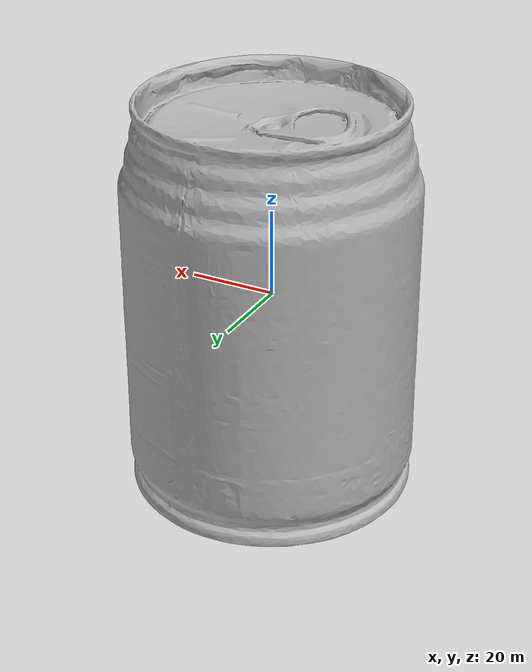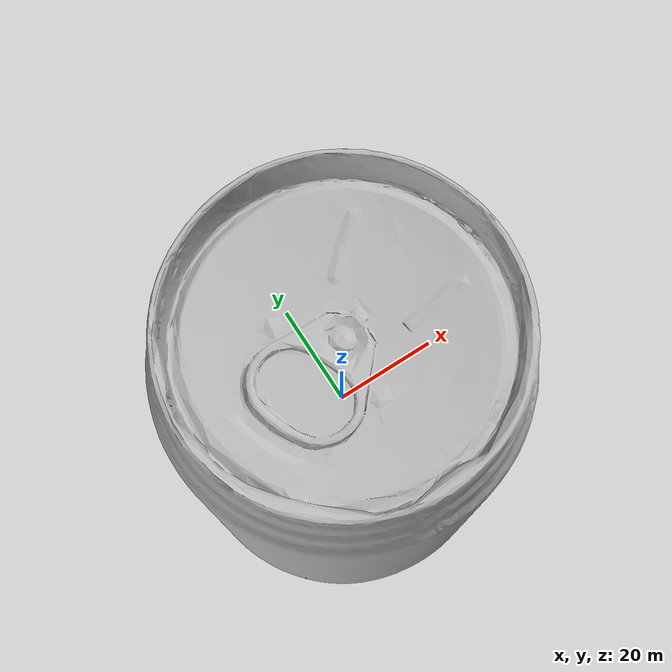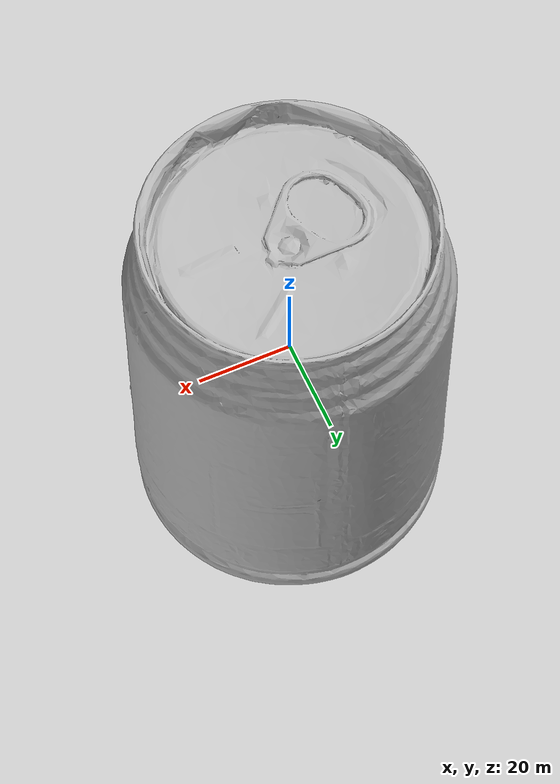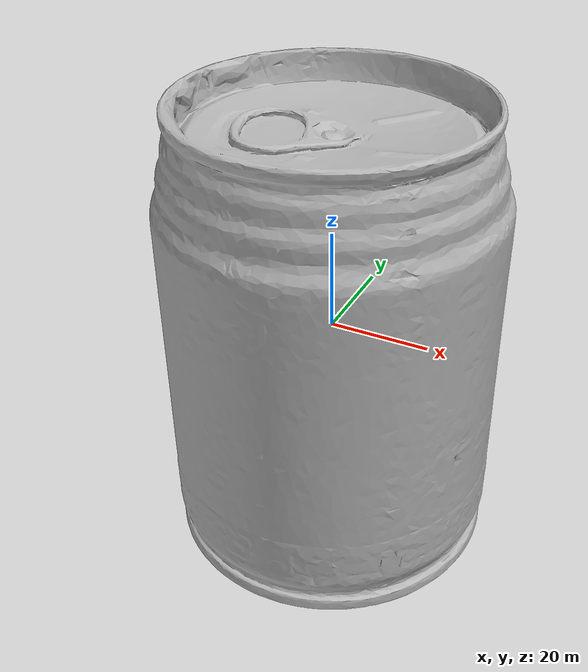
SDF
<sdf version="1.4">
 <world name="default">
  <light name="light1" type="point">
   <pose>0 0 1 0 0 0</pose>
   <diffuse>3 3 3 1</diffuse>
   <specular>3 3 3 1</specular>
  </light>
  <light name="light2" type="point">
   <pose>0 0.5 2 0 0 0</pose>
   <diffuse>1 1 1 1</diffuse>
   <specular>1 1 1 1</specular>
  </light>
  <light name="light3" type="point">
   <pose>0 0.5 2 0 0 0</pose>
   <diffuse>3 3 3 1</diffuse>
   <specular>3 3 3 1</specular>
  </light>
  <scene><ambient>0.7 0.7 0.7</ambient></scene>
  <model name="box1">
   <link name="link_box1">
    <collision name="default">
     <geometry>
      <mesh><uri>model://wooden_puzzle1/collision_meshes/collision.obj</uri><scale>1.0 1.0 1.0</scale></mesh>
     </geometry>
     <surface>
      <friction><ode><mu>0.5</mu><mu2>0.5</mu2></ode></friction>
      <contact><ode><max_vel>0</max_vel><min_depth>0.0001</min_depth><kp>1e8</kp></ode></contact>
     </surface>
    </collision>
    <visual name="default">
     <geometry>
      <mesh><uri>model://wooden_puzzle1/visual_meshes/visual.dae</uri><scale>1.0 1.0 1.0</scale></mesh>
     </geometry>
    </visual>
    <inertial>
     <mass>0.025116289034485817</mass>
     <pose>-0.00017350679263472557 7.972260937094688e-05 -9.191555000143126e-05 -0.07784885804399136 -0.2636065522190298 -0.5528757227143044</pose>
     <inertia>
      <ixx>4.7387575e-06</ixx>
      <iyy>4.647534e-06</iyy>
      <izz>4.7029785e-06</izz>
      <ixy>0</ixy>
      <ixz>0</ixz>
      <iyz>0</iyz>
     </inertia>
    </inertial>
   </link>
   <pose>0.16632626950740814 -0.38049036264419556 0.0168019887059927 0.010515780898731189 -0.009457575884297742 0.17607425134252094</pose>
  </model>
  <model name="box3">
   <link name="link_box3">
    <collision name="default">
     <geometry>
      <mesh><uri>model://wooden_puzzle2/collision_meshes/collision.obj</uri><scale>1.0 1.0 1.0</scale></mesh>
     </geometry>
     <surface>
      <friction><ode><mu>0.5</mu><mu2>0.5</mu2></ode></friction>
      <contact><ode><max_vel>0</max_vel><min_depth>0.0001</min_depth><kp>1e8</kp></ode></contact>
     </surface>
    </collision>
    <visual name="default">
     <geometry>
      <mesh><uri>model://wooden_puzzle2/visual_meshes/visual.dae</uri><scale>1.0 1.0 1.0</scale></mesh>
     </geometry>
    </visual>
    <inertial>
     <mass>0.025376593694090843</mass>
     <pose>2.7402536943554878e-05 4.997663199901581e-05 6.587122334167361e-05 -0.1920355258808483 0.6112750807505014 -0.6338716229052327</pose>
     <inertia>
      <ixx>4.7172375e-06</ixx>
      <iyy>4.8472266e-06</iyy>
      <izz>4.778271e-06</izz>
      <ixy>0</ixy>
      <ixz>0</ixz>
      <iyz>0</iyz>
     </inertia>
    </inertial>
   </link>
   <pose>0.07180654257535934 0.27882757782936096 0.01691773347556591 0.020848384565863267 0.0007214576589247447 2.463595150234853</pose>
  </model>
  <model name="can1">
   <link name="link_can1">
    <collision name="default">
     <geometry>
      <mesh><uri>model://redbull/collision_meshes/collision.obj</uri><scale>1.0 1.0 1.0</scale></mesh>
     </geometry>
     <surface>
      <friction><ode><mu>0.5</mu><mu2>0.5</mu2></ode></friction>
      <contact><ode><max_vel>0</max_vel><min_depth>0.0001</min_depth><kp>1e8</kp></ode></contact>
     </surface>
    </collision>
    <visual name="default">
     <geometry>
      <mesh><uri>model://redbull/visual_meshes/visual.dae</uri><scale>1.0 1.0 1.0</scale></mesh>
     </geometry>
    </visual>
    <inertial>
     <mass>0.2544018626213074</mass>
     <pose>-2.2126756448415108e-05 -0.0001265947794308886 -0.0006860987632535398 0.0011376600102847077 -0.01080087162846833 0.5858227764205248</pose>
     <inertia>
      <ixx>0.00023919248</ixx>
      <iyy>0.00023939437</iyy>
      <izz>0.00014194298</izz>
      <ixy>0</ixy>
      <ixz>0</ixz>
      <iyz>0</iyz>
     </inertia>
    </inertial>
   </link>
   <pose>0.2668250799179077 -0.07260125875473022 0.04638563096523285 -0.01048949967117471 0.007260209038645047 -0.7590789650266473</pose>
  </model>
  <model name="can2">
   <link name="link_can2">
    <collision name="default">
     <geometry>
      <mesh><uri>model://pepsi/collision_meshes/collision.obj</uri><scale>1.0 1.0 1.0</scale></mesh>
     </geometry>
     <surface>
      <friction><ode><mu>0.5</mu><mu2>0.5</mu2></ode></friction>
      <contact><ode><max_vel>0</max_vel><min_depth>0.0001</min_depth><kp>1e8</kp></ode></contact>
     </surface>
    </collision>
    <visual name="default">
     <geometry><mesh><uri>model://pepsi/visual_meshes/visual.dae</uri><scale>1.0 1.0 1.0</scale></mesh></geometry>
    </visual>
    <inertial>
     <mass>0.4552207291126251</mass>
     <pose>-7.5590331107378e-05 2.99312814604491e-05 -0.0003384356095921248 -0.0010679690801074441 -0.0021734768369219134 0.5674650232372158</pose>
     <inertia>
      <ixx>0.0009068869</ixx>
      <iyy>0.0009062263</iyy>
      <izz>0.00019301806</izz>
      <ixy>0</ixy>
      <ixz>0</ixz>
      <iyz>0</iyz>
     </inertia>
    </inertial>
   </link>
   <pose>0.2030017226934433 -0.2007438838481903 0.07449628412723541 -1.8250767619101878e-05 2.2555606639993195e-06 -2.8517281974888515</pose>
  </model>
  <physics type="ode">
   <max_contacts>50</max_contacts>
   <ode>
    <solver><type>quick</type><iters>75</iters></solver>
    <constraints>
     <contact_max_correcting_vel>0</contact_max_correcting_vel>
     <contact_surface_layer>0</contact_surface_layer>
    </constraints>
   </ode>
  </physics>
 </world>
</sdf>
